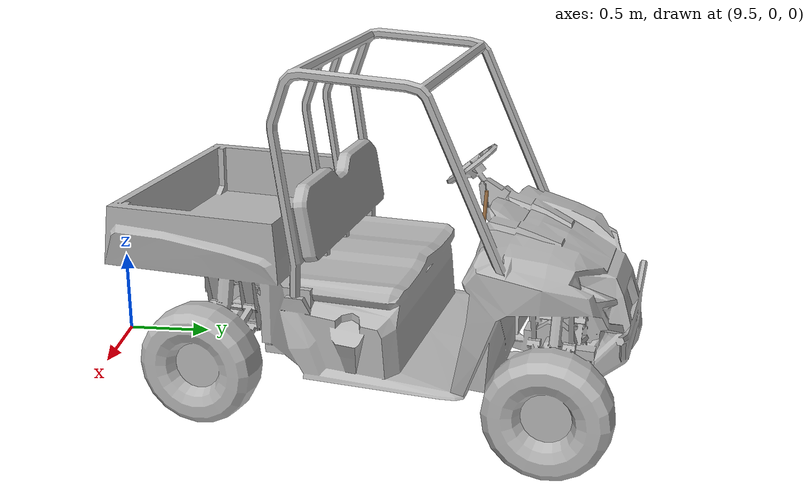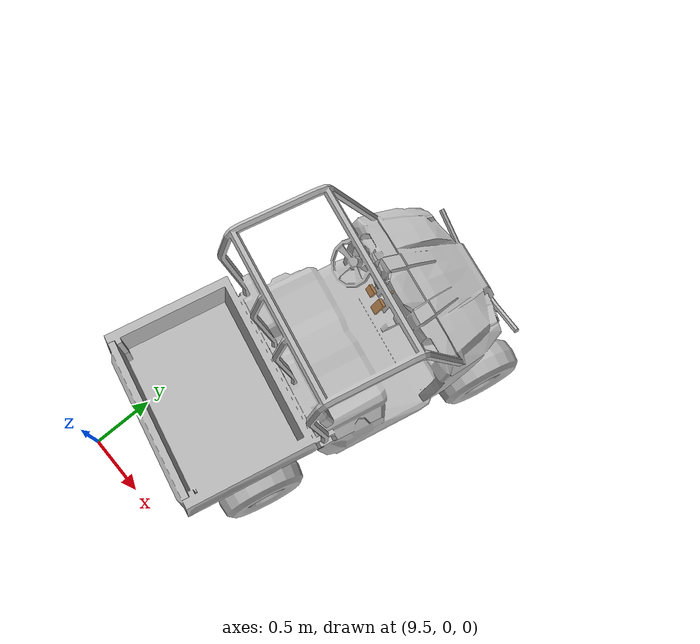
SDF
<sdf version="1.6">
 <world name="default">
  <model name="polaris_ranger_ev_clone_1_clone_clone_clone">
   <static>true</static>
   <link name="chassis">
    <inertial>
     <mass>720</mass>
     <inertia><ixx>140</ixx><ixy>0</ixy><iyy>550</iyy><ixz>0</ixz><iyz>0</iyz><izz>550</izz></inertia>
    </inertial>
    <visual name="visual">
     <pose>0 0 0 0 0 -1.5708</pose>
     <geometry><mesh><uri>model://polaris_ranger_ev/meshes/polaris.dae</uri><scale>1 1 1</scale></mesh></geometry>
     <material>
      <script>
       <uri>model://polaris_ranger_ev/materials/scripts</uri>
       <uri>model://polaris_ranger_ev/materials/textures</uri>
       <name>Polaris/Diffuse</name>
      </script>
     </material>
    </visual>
    <collision name="chassis_bottom">
     <pose>0 0 0.35 0 -0 0</pose>
     <geometry><box><size>2 1 0.1</size></box></geometry>
    </collision>
    <collision name="cargo_bottom">
     <pose>-0.9 0 0.9 0 -0 0</pose>
     <geometry><box><size>0.9 1.2 0.01</size></box></geometry>
    </collision>
    <collision name="cargo_front">
     <pose>-0.45 0 1.025 0 -0 0</pose>
     <geometry><box><size>0.05 1.2 0.25</size></box></geometry>
    </collision>
    <collision name="cargo_back">
     <pose>-1.35 0 1.025 0 -0 0</pose>
     <geometry><box><size>0.05 1.2 0.25</size></box></geometry>
    </collision>
    <collision name="cargo_left">
     <pose>-0.9 0.6 1.025 0 -0 0</pose>
     <geometry><box><size>0.9 0.05 0.25</size></box></geometry>
    </collision>
    <collision name="cargo_right">
     <pose>-0.9 -0.6 1.025 0 -0 0</pose>
     <geometry><box><size>0.9 0.05 0.25</size></box></geometry>
    </collision>
    <collision name="seat">
     <pose>-0.1 0 0.625 0 -0 0</pose>
     <geometry><box><size>0.6 1 0.65</size></box></geometry>
    </collision>
    <collision name="seat_back">
     <pose>-0.3 0 1.125 0 -0.2 0</pose>
     <geometry><box><size>0.1 1 0.4</size></box></geometry>
    </collision>
    <collision name="engine">
     <pose>0.95 0 0.7 0 -0 0</pose>
     <geometry><box><size>0.58 1 0.8</size></box></geometry>
    </collision>
    <collision name="steering_column">
     <pose>0.525 0.3 1.025 0 -0.8 0</pose>
     <geometry><cylinder><radius>0.05</radius><length>0.45</length></cylinder></geometry>
    </collision>
   </link>
   <link name="rear_right_wheel">
    <pose>-0.85 -0.6 0.32 1.5708 -0 0</pose>
    <inertial>
     <mass>12</mass>
     <inertia><ixx>0.5</ixx><ixy>0</ixy><iyy>0.5</iyy><ixz>0</ixz><iyz>0</iyz><izz>1</izz></inertia>
    </inertial>
    <collision name="collision">
     <geometry><cylinder><radius>0.32</radius><length>0.23</length></cylinder></geometry>
     <surface>
      <friction><ode><mu>100000</mu><mu2>100000</mu2><slip1>0</slip1><slip2>0</slip2></ode></friction>
     </surface>
    </collision>
   </link>
   <joint name="rear_right_wheel_joint" type="revolute">
    <pose>0 0 -0.1 0 -0 0</pose>
    <child>rear_right_wheel</child>
    <parent>chassis</parent>
    <axis>
     <xyz>0 1 0</xyz>
     <use_parent_model_frame>1</use_parent_model_frame>
     <limit><lower>-1e+16</lower><upper>1e+16</upper></limit>
     <dynamics><spring_reference>0</spring_reference><spring_stiffness>0</spring_stiffness></dynamics>
    </axis>
    <physics><ode><limit><cfm>0</cfm><erp>0.9</erp></limit></ode></physics>
   </joint>
   <link name="rear_left_wheel">
    <pose>-0.85 0.6 0.32 1.5708 -0 0</pose>
    <inertial>
     <mass>12</mass>
     <inertia><ixx>0.5</ixx><ixy>0</ixy><iyy>0.5</iyy><ixz>0</ixz><iyz>0</iyz><izz>1</izz></inertia>
    </inertial>
    <collision name="collision">
     <geometry><cylinder><radius>0.32</radius><length>0.23</length></cylinder></geometry>
     <surface>
      <friction><ode><mu>100000</mu><mu2>100000</mu2><slip1>0</slip1><slip2>0</slip2></ode></friction>
     </surface>
    </collision>
   </link>
   <joint name="rear_left_wheel_joint" type="revolute">
    <child>rear_left_wheel</child>
    <parent>chassis</parent>
    <axis>
     <xyz>0 1 0</xyz>
     <use_parent_model_frame>1</use_parent_model_frame>
     <limit><lower>-1e+16</lower><upper>1e+16</upper></limit>
     <dynamics><spring_reference>0</spring_reference><spring_stiffness>0</spring_stiffness></dynamics>
    </axis>
    <physics><ode><limit><cfm>0</cfm><erp>0.9</erp></limit></ode></physics>
   </joint>
   <link name="front_right_wheel">
    <pose>1.03 -0.6 0.32 1.5708 -0 0</pose>
    <inertial>
     <mass>12</mass>
     <inertia><ixx>0.5</ixx><ixy>0</ixy><iyy>0.5</iyy><ixz>0</ixz><iyz>0</iyz><izz>1</izz></inertia>
    </inertial>
    <collision name="collision">
     <geometry><cylinder><radius>0.32</radius><length>0.23</length></cylinder></geometry>
     <surface>
      <friction><ode><mu>100000</mu><mu2>100000</mu2><slip1>0</slip1><slip2>0</slip2></ode></friction>
     </surface>
    </collision>
   </link>
   <link name="front_right_wheel_steering_block">
    <pose>1.03 -0.5 0.32 1.5708 -0 0</pose>
    <inertial>
     <mass>1</mass>
     <inertia><ixx>1</ixx><ixy>0</ixy><iyy>1</iyy><ixz>0</ixz><iyz>0</iyz><izz>1</izz></inertia>
    </inertial>
    <collision name="collision">
     <geometry><cylinder><radius>0.05</radius><length>0.01</length></cylinder></geometry>
    </collision>
   </link>
   <joint name="front_right_steering_joint" type="revolute">
    <child>front_right_wheel_steering_block</child>
    <parent>chassis</parent>
    <axis>
     <xyz>0 0 1</xyz>
     <limit><lower>-1</lower><upper>1</upper></limit>
     <use_parent_model_frame>1</use_parent_model_frame>
     <dynamics><spring_reference>0</spring_reference><spring_stiffness>0</spring_stiffness></dynamics>
    </axis>
    <physics><ode><limit><cfm>0</cfm><erp>0.9</erp></limit></ode></physics>
   </joint>
   <joint name="front_right_wheel_joint" type="revolute">
    <child>front_right_wheel</child>
    <parent>front_right_wheel_steering_block</parent>
    <axis>
     <xyz>0 1 0</xyz>
     <use_parent_model_frame>1</use_parent_model_frame>
     <limit><lower>-1e+16</lower><upper>1e+16</upper></limit>
     <dynamics><spring_reference>0</spring_reference><spring_stiffness>0</spring_stiffness></dynamics>
    </axis>
    <physics><ode><limit><cfm>0</cfm><erp>0.9</erp></limit></ode></physics>
   </joint>
   <link name="front_left_wheel">
    <pose>1.03 0.6 0.32 1.5708 -0 0</pose>
    <inertial>
     <mass>12</mass>
     <inertia><ixx>0.5</ixx><ixy>0</ixy><iyy>0.5</iyy><ixz>0</ixz><iyz>0</iyz><izz>1</izz></inertia>
    </inertial>
    <collision name="collision">
     <geometry><cylinder><radius>0.32</radius><length>0.23</length></cylinder></geometry>
     <surface>
      <friction><ode><mu>100000</mu><mu2>100000</mu2><slip1>0</slip1><slip2>0</slip2></ode></friction>
     </surface>
    </collision>
   </link>
   <link name="front_left_wheel_steering_block">
    <pose>1.03 0.5 0.32 1.5708 -0 0</pose>
    <inertial>
     <mass>1</mass>
     <inertia><ixx>1</ixx><ixy>0</ixy><iyy>1</iyy><ixz>0</ixz><iyz>0</iyz><izz>1</izz></inertia>
    </inertial>
    <collision name="collision">
     <geometry><cylinder><radius>0.05</radius><length>0.01</length></cylinder></geometry>
    </collision>
   </link>
   <joint name="front_left_steering_joint" type="revolute">
    <child>front_left_wheel_steering_block</child>
    <parent>chassis</parent>
    <axis>
     <xyz>0 0 1</xyz>
     <limit><lower>-1</lower><upper>1</upper></limit>
     <use_parent_model_frame>1</use_parent_model_frame>
     <dynamics><spring_reference>0</spring_reference><spring_stiffness>0</spring_stiffness></dynamics>
    </axis>
    <physics><ode><limit><cfm>0</cfm><erp>0.9</erp></limit></ode></physics>
   </joint>
   <joint name="front_left_wheel_joint" type="revolute">
    <child>front_left_wheel</child>
    <parent>front_left_wheel_steering_block</parent>
    <axis>
     <xyz>0 1 0</xyz>
     <use_parent_model_frame>1</use_parent_model_frame>
     <limit><lower>-1e+16</lower><upper>1e+16</upper></limit>
     <dynamics><spring_reference>0</spring_reference><spring_stiffness>0</spring_stiffness></dynamics>
    </axis>
    <physics><ode><limit><cfm>0</cfm><erp>0.9</erp></limit></ode></physics>
   </joint>
   <link name="gas_pedal">
    <pose>0.53 0.14 0.56 0 -1 0</pose>
    <gravity>0</gravity>
    <inertial>
     <mass>0.1</mass>
     <inertia><ixx>0.01</ixx><ixy>0</ixy><ixz>0</ixz><iyy>0.01</iyy><iyz>0</iyz><izz>0.01</izz></inertia>
    </inertial>
    <collision name="gas_pedal_collision"><geometry><box><size>0.12 0.07 0.03</size></box></geometry></collision>
    <visual name="gas_pedal_visual">
     <geometry><box><size>0.12 0.07 0.03</size></box></geometry>
     <material>
      <script><uri>file://media/materials/scripts/gazebo.material</uri><name>Gazebo/Wood</name></script>
      <ambient>0.2 0.2 0.2 1</ambient>
      <diffuse>0.2 0.2 0.2 1</diffuse>
      <specular>0.2 0.2 0.2 1</specular>
      <emissive>0.5 0.5 0.5 1</emissive>
     </material>
    </visual>
   </link>
   <link name="brake_pedal">
    <gravity>0</gravity>
    <pose>0.54 0.27 0.58 0 -1 0</pose>
    <inertial>
     <mass>0.1</mass>
     <inertia><ixx>0.01</ixx><ixy>0</ixy><ixz>0</ixz><iyy>0.01</iyy><iyz>0</iyz><izz>0.01</izz></inertia>
    </inertial>
    <collision name="brake_pedal_collision">
     <geometry><box><size>0.06 0.08 0.03</size></box></geometry>
    </collision>
    <visual name="brake_pedal_visual">
     <geometry><box><size>0.06 0.08 0.03</size></box></geometry>
     <material>
      <script><uri>file://media/materials/scripts/gazebo.material</uri><name>Gazebo/Wood</name></script>
      <ambient>0.2 0.2 0.2 1</ambient>
      <diffuse>0.2 0.2 0.2 1</diffuse>
      <specular>0.2 0.2 0.2 1</specular>
      <emissive>0.5 0.5 0.5 1</emissive>
     </material>
    </visual>
   </link>
   <link name="steering_wheel">
    <pose>0.37 0.3 1.2 0 -0.8 0</pose>
    <inertial>
     <mass>1</mass>
     <inertia><ixx>0.1</ixx><ixy>0</ixy><ixz>0</ixz><iyy>0.1</iyy><iyz>0</iyz><izz>1</izz></inertia>
    </inertial>
    <collision name="steering_wheel_post_left">
     <pose>0 0.08 0 1.5708 -0 0</pose>
     <geometry><cylinder><radius>0.02</radius><length>0.15</length></cylinder></geometry>
    </collision>
    <collision name="steering_wheel_post_right">
     <pose>0 -0.08 0 1.5708 -0 0</pose>
     <geometry><cylinder><radius>0.02</radius><length>0.15</length></cylinder></geometry>
    </collision>
    <collision name="steering_wheel_post_middle">
     <pose>-0.08 0 0 3.14159 1.57079 3.14159</pose>
     <geometry><cylinder><radius>0.02</radius><length>0.15</length></cylinder></geometry>
    </collision>
    <collision name="collision00">
     <pose>0.15 0 0 3.14159 1.57079 -1.57079</pose>
     <geometry><cylinder><length>0.105066</length><radius>0.01</radius></cylinder></geometry>
    </collision>
    <collision name="collision01">
     <pose>0.121353 0.088168 0 3.14159 1.57079 -0.942483</pose>
     <geometry><cylinder><length>0.105066</length><radius>0.01</radius></cylinder></geometry>
    </collision>
    <collision name="collision02">
     <pose>0.046353 0.142658 0 3.14159 1.57079 -0.314163</pose>
     <geometry><cylinder><length>0.105066</length><radius>0.01</radius></cylinder></geometry>
    </collision>
    <collision name="collision03">
     <pose>-0.046353 0.142658 0 3.14159 1.57079 0.314163</pose>
     <geometry><cylinder><length>0.105066</length><radius>0.01</radius></cylinder></geometry>
    </collision>
    <collision name="collision04">
     <pose>-0.121353 0.088168 0 -3.14159 1.57079 0.942483</pose>
     <geometry><cylinder><length>0.105066</length><radius>0.01</radius></cylinder></geometry>
    </collision>
    <collision name="collision05">
     <pose>-0.15 0 0 -3.14159 1.57079 1.57079</pose>
     <geometry><cylinder><length>0.105066</length><radius>0.01</radius></cylinder></geometry>
    </collision>
    <collision name="collision06">
     <pose>-0.121353 -0.088168 0 3.14159 1.57079 2.19912</pose>
     <geometry><cylinder><length>0.105066</length><radius>0.01</radius></cylinder></geometry>
    </collision>
    <collision name="collision07">
     <pose>-0.046353 -0.142658 0 -3.14159 1.57079 2.82743</pose>
     <geometry><cylinder><length>0.105066</length><radius>0.01</radius></cylinder></geometry>
    </collision>
    <collision name="collision08">
     <pose>0.046353 -0.142658 0 3.14159 1.57079 -2.82743</pose>
     <geometry><cylinder><length>0.105066</length><radius>0.01</radius></cylinder></geometry>
    </collision>
    <collision name="collision09">
     <pose>0.121353 -0.088168 0 -3.14159 1.57079 -2.19911</pose>
     <geometry><cylinder><length>0.105066</length><radius>0.01</radius></cylinder></geometry>
    </collision>
   </link>
   <link name="hand_brake">
    <pose>0.5 0 1.05 3.14159 -0.058407 3.14159</pose>
    <inertial>
     <mass>1</mass>
     <pose>0 0 -0.15 0 -0 0</pose>
     <inertia><ixx>0.1</ixx><ixy>0</ixy><ixz>0</ixz><iyy>0.1</iyy><iyz>0</iyz><izz>1</izz></inertia>
    </inertial>
    <collision name="hand_brake_collision">
     <pose>0 0 -0.1 0 -0 0</pose>
     <geometry><cylinder><radius>0.01</radius><length>0.2</length></cylinder></geometry>
    </collision>
    <visual name="hand_brake_visual">
     <pose>0 0 -0.1 0 -0 0</pose>
     <geometry><cylinder><radius>0.01</radius><length>0.2</length></cylinder></geometry>
     <material>
      <script><uri>file://media/materials/scripts/gazebo.material</uri><name>Gazebo/Wood</name></script>
     </material>
    </visual>
   </link>
   <joint name="gas_joint" type="prismatic">
    <parent>chassis</parent>
    <child>gas_pedal</child>
    <axis>
     <xyz>1 0 -1</xyz>
     <limit><lower>0</lower><upper>0.15</upper></limit>
     <use_parent_model_frame>1</use_parent_model_frame>
     <dynamics><spring_reference>0</spring_reference><spring_stiffness>0</spring_stiffness></dynamics>
    </axis>
   </joint>
   <joint name="brake_joint" type="prismatic">
    <parent>chassis</parent>
    <child>brake_pedal</child>
    <axis>
     <xyz>1 0 -0.6</xyz>
     <limit><lower>0</lower><upper>0.15</upper></limit>
     <use_parent_model_frame>1</use_parent_model_frame>
     <dynamics><spring_reference>0</spring_reference><spring_stiffness>0</spring_stiffness></dynamics>
    </axis>
   </joint>
   <joint name="steering_joint" type="revolute">
    <pose>0 0 0 1.5708 -0.8 0</pose>
    <parent>chassis</parent>
    <child>steering_wheel</child>
    <axis>
     <xyz>-1 0 1.023</xyz>
     <limit><lower>-7.853</lower><upper>7.853</upper></limit>
     <use_parent_model_frame>1</use_parent_model_frame>
     <dynamics><spring_reference>0</spring_reference><spring_stiffness>0</spring_stiffness></dynamics>
    </axis>
   </joint>
   <joint name="hand_brake_joint" type="revolute">
    <parent>chassis</parent>
    <child>hand_brake</child>
    <axis>
     <xyz>0 -1 0</xyz>
     <limit><lower>0</lower><upper>0.6</upper></limit>
     <use_parent_model_frame>1</use_parent_model_frame>
     <dynamics><spring_reference>0</spring_reference><spring_stiffness>0</spring_stiffness></dynamics>
    </axis>
   </joint>
   <pose>10.2371 1.74398 -5e-05 3e-06 5.3e-05 1.34838</pose>
  </model>
 </world>
</sdf>
